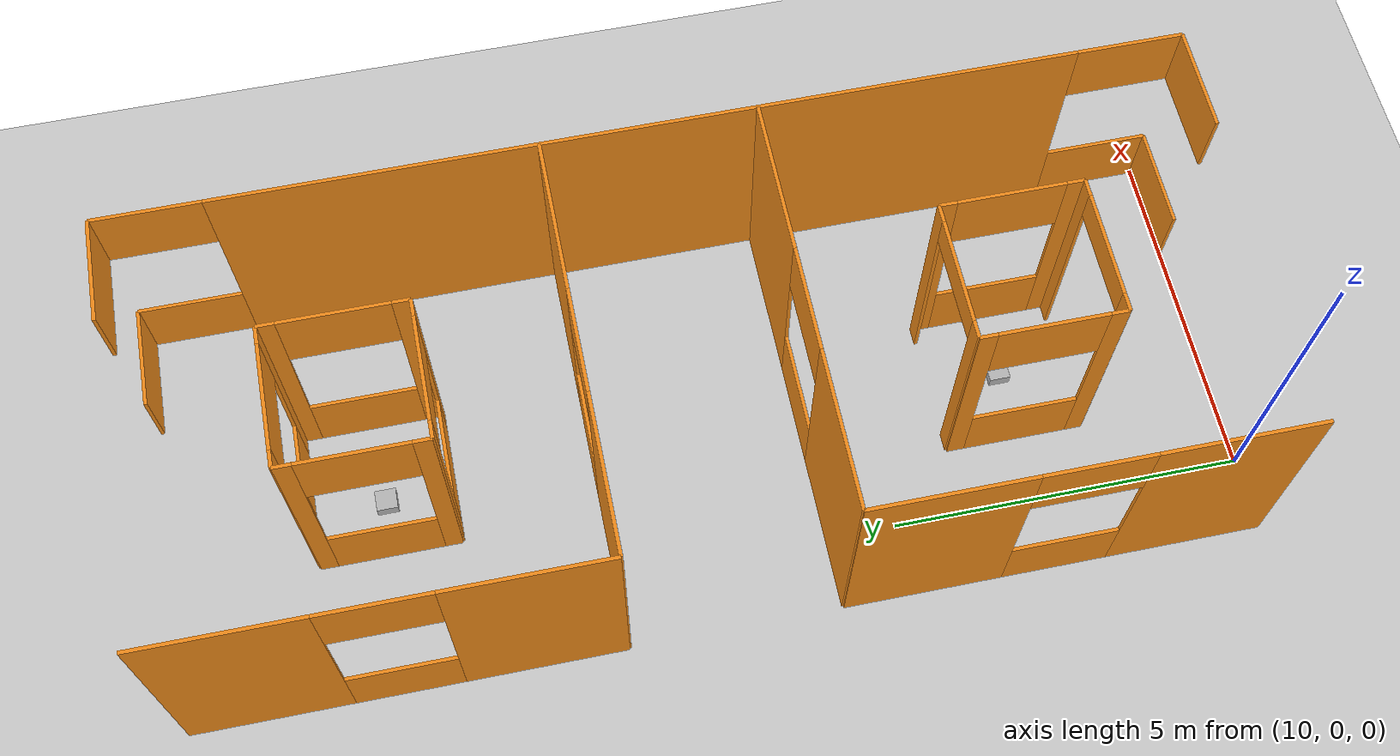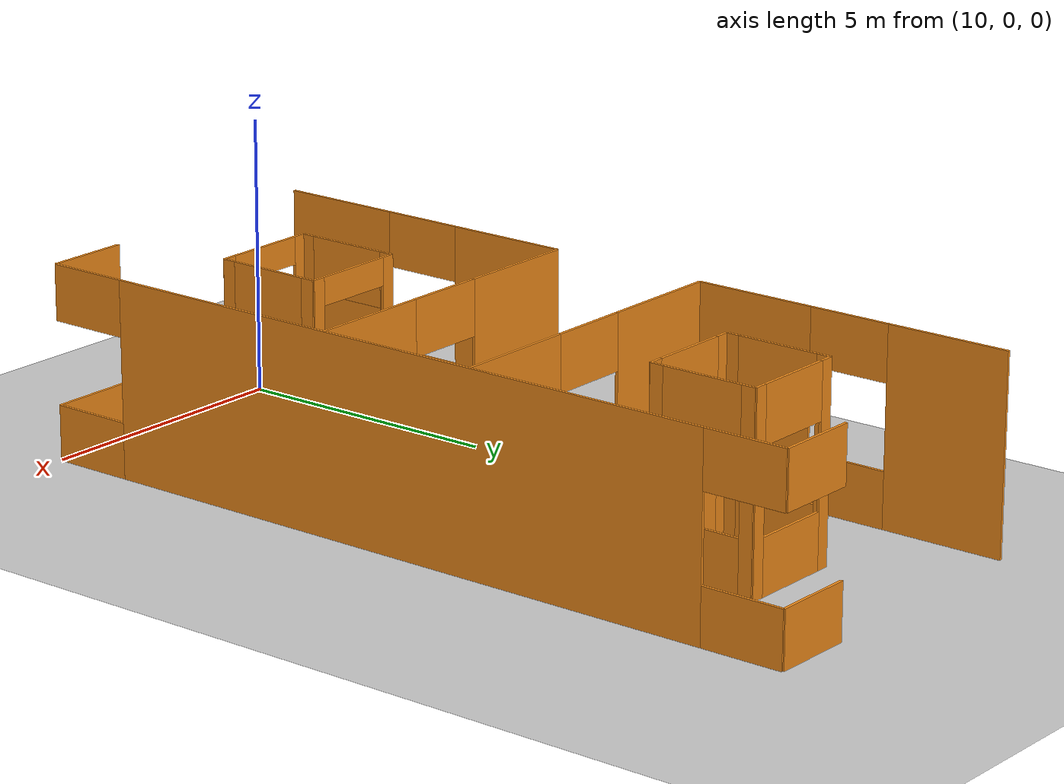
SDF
<sdf version="1.6">
 <world name="default">
  <include><uri>model://rirpc_box</uri><name>cube_4</name><pose>11.78125 11.96875 0 0 0 0</pose></include>
  <include><uri>model://rirpc_box</uri><name>cube_1</name><pose>12.03125 2.96875 0 0 0 0</pose></include>
  <model name="window_26">
   <pose>13.0 3.0 1.75 0 0 -1.5707963267948966</pose>
   <link name="top">
    <pose>0 0 1.25 0 0 0</pose>
    <inertial>
     <mass>1</mass>
     <inertia><ixx>0</ixx><ixy>0</ixy><ixz>0</ixz><iyy>0</iyy><iyz>0</iyz><izz>0</izz></inertia>
    </inertial>
    <collision name="collision"><geometry><box><size>1.5 0.05 1.0</size></box></geometry></collision>
    <visual name="visual">
     <geometry><box><size>1.5 0.05 1.0</size></box></geometry>
     <material>
      <script><name>Gazebo/Orange</name><uri>file://media/materials/scripts/gazebo.material</uri></script>
     </material>
    </visual>
   </link>
   <link name="bot">
    <pose>0 0 -1.25 0 0 0</pose>
    <inertial>
     <mass>1</mass>
     <inertia><ixx>0</ixx><ixy>0</ixy><ixz>0</ixz><iyy>0</iyy><iyz>0</iyz><izz>0</izz></inertia>
    </inertial>
    <collision name="collision"><geometry><box><size>1.5 0.05 1.0</size></box></geometry></collision>
    <visual name="visual">
     <geometry><box><size>1.5 0.05 1.0</size></box></geometry>
     <material>
      <script><name>Gazebo/Orange</name><uri>file://media/materials/scripts/gazebo.material</uri></script>
     </material>
    </visual>
   </link>
   <static>1</static>
  </model>
  <model name="window_25">
   <pose>11.0 3.0 1.75 0 0 1.5707963267948966</pose>
   <link name="top">
    <pose>0 0 1.25 0 0 0</pose>
    <inertial>
     <mass>1</mass>
     <inertia><ixx>0</ixx><ixy>0</ixy><ixz>0</ixz><iyy>0</iyy><iyz>0</iyz><izz>0</izz></inertia>
    </inertial>
    <collision name="collision"><geometry><box><size>1.5 0.05 1.0</size></box></geometry></collision>
    <visual name="visual">
     <geometry><box><size>1.5 0.05 1.0</size></box></geometry>
     <material>
      <script><name>Gazebo/Orange</name><uri>file://media/materials/scripts/gazebo.material</uri></script>
     </material>
    </visual>
   </link>
   <link name="bot">
    <pose>0 0 -1.25 0 0 0</pose>
    <inertial>
     <mass>1</mass>
     <inertia><ixx>0</ixx><ixy>0</ixy><ixz>0</ixz><iyy>0</iyy><iyz>0</iyz><izz>0</izz></inertia>
    </inertial>
    <collision name="collision"><geometry><box><size>1.5 0.05 1.0</size></box></geometry></collision>
    <visual name="visual">
     <geometry><box><size>1.5 0.05 1.0</size></box></geometry>
     <material>
      <script><name>Gazebo/Orange</name><uri>file://media/materials/scripts/gazebo.material</uri></script>
     </material>
    </visual>
   </link>
   <static>1</static>
  </model>
  <model name="window_24">
   <pose>12.0 13.0 1.75 0 0 -3.141592653589793</pose>
   <link name="top">
    <pose>0 0 1.25 0 0 0</pose>
    <inertial>
     <mass>1</mass>
     <inertia><ixx>0</ixx><ixy>0</ixy><ixz>0</ixz><iyy>0</iyy><iyz>0</iyz><izz>0</izz></inertia>
    </inertial>
    <collision name="collision"><geometry><box><size>1.5 0.05 1.0</size></box></geometry></collision>
    <visual name="visual">
     <geometry><box><size>1.5 0.05 1.0</size></box></geometry>
     <material>
      <script><name>Gazebo/Orange</name><uri>file://media/materials/scripts/gazebo.material</uri></script>
     </material>
    </visual>
   </link>
   <link name="bot">
    <pose>0 0 -1.25 0 0 0</pose>
    <inertial>
     <mass>1</mass>
     <inertia><ixx>0</ixx><ixy>0</ixy><ixz>0</ixz><iyy>0</iyy><iyz>0</iyz><izz>0</izz></inertia>
    </inertial>
    <collision name="collision"><geometry><box><size>1.5 0.05 1.0</size></box></geometry></collision>
    <visual name="visual">
     <geometry><box><size>1.5 0.05 1.0</size></box></geometry>
     <material>
      <script><name>Gazebo/Orange</name><uri>file://media/materials/scripts/gazebo.material</uri></script>
     </material>
    </visual>
   </link>
   <static>1</static>
  </model>
  <model name="window_23">
   <pose>11.0 12.0 1.75 0 0 -1.5707963267948966</pose>
   <link name="top">
    <pose>0 0 1.25 0 0 0</pose>
    <inertial>
     <mass>1</mass>
     <inertia><ixx>0</ixx><ixy>0</ixy><ixz>0</ixz><iyy>0</iyy><iyz>0</iyz><izz>0</izz></inertia>
    </inertial>
    <collision name="collision"><geometry><box><size>1.5 0.05 1.0</size></box></geometry></collision>
    <visual name="visual">
     <geometry><box><size>1.5 0.05 1.0</size></box></geometry>
     <material>
      <script><name>Gazebo/Orange</name><uri>file://media/materials/scripts/gazebo.material</uri></script>
     </material>
    </visual>
   </link>
   <link name="bot">
    <pose>0 0 -1.25 0 0 0</pose>
    <inertial>
     <mass>1</mass>
     <inertia><ixx>0</ixx><ixy>0</ixy><ixz>0</ixz><iyy>0</iyy><iyz>0</iyz><izz>0</izz></inertia>
    </inertial>
    <collision name="collision"><geometry><box><size>1.5 0.05 1.0</size></box></geometry></collision>
    <visual name="visual">
     <geometry><box><size>1.5 0.05 1.0</size></box></geometry>
     <material>
      <script><name>Gazebo/Orange</name><uri>file://media/materials/scripts/gazebo.material</uri></script>
     </material>
    </visual>
   </link>
   <static>1</static>
  </model>
  <model name="window_22">
   <pose>12.0 11.0 1.75 0 0 -0.0</pose>
   <link name="top">
    <pose>0 0 1.25 0 0 0</pose>
    <inertial>
     <mass>1</mass>
     <inertia><ixx>0</ixx><ixy>0</ixy><ixz>0</ixz><iyy>0</iyy><iyz>0</iyz><izz>0</izz></inertia>
    </inertial>
    <collision name="collision"><geometry><box><size>1.5 0.05 1.0</size></box></geometry></collision>
    <visual name="visual">
     <geometry><box><size>1.5 0.05 1.0</size></box></geometry>
     <material>
      <script><name>Gazebo/Orange</name><uri>file://media/materials/scripts/gazebo.material</uri></script>
     </material>
    </visual>
   </link>
   <link name="bot">
    <pose>0 0 -1.25 0 0 0</pose>
    <inertial>
     <mass>1</mass>
     <inertia><ixx>0</ixx><ixy>0</ixy><ixz>0</ixz><iyy>0</iyy><iyz>0</iyz><izz>0</izz></inertia>
    </inertial>
    <collision name="collision"><geometry><box><size>1.5 0.05 1.0</size></box></geometry></collision>
    <visual name="visual">
     <geometry><box><size>1.5 0.05 1.0</size></box></geometry>
     <material>
      <script><name>Gazebo/Orange</name><uri>file://media/materials/scripts/gazebo.material</uri></script>
     </material>
    </visual>
   </link>
   <static>1</static>
  </model>
  <model name="window_21">
   <pose>13.0 12.0 1.75 0 0 1.5707963267948966</pose>
   <link name="top">
    <pose>0 0 1.25 0 0 0</pose>
    <inertial>
     <mass>1</mass>
     <inertia><ixx>0</ixx><ixy>0</ixy><ixz>0</ixz><iyy>0</iyy><iyz>0</iyz><izz>0</izz></inertia>
    </inertial>
    <collision name="collision"><geometry><box><size>1.5 0.05 1.0</size></box></geometry></collision>
    <visual name="visual">
     <geometry><box><size>1.5 0.05 1.0</size></box></geometry>
     <material>
      <script><name>Gazebo/Orange</name><uri>file://media/materials/scripts/gazebo.material</uri></script>
     </material>
    </visual>
   </link>
   <link name="bot">
    <pose>0 0 -1.25 0 0 0</pose>
    <inertial>
     <mass>1</mass>
     <inertia><ixx>0</ixx><ixy>0</ixy><ixz>0</ixz><iyy>0</iyy><iyz>0</iyz><izz>0</izz></inertia>
    </inertial>
    <collision name="collision"><geometry><box><size>1.5 0.05 1.0</size></box></geometry></collision>
    <visual name="visual">
     <geometry><box><size>1.5 0.05 1.0</size></box></geometry>
     <material>
      <script><name>Gazebo/Orange</name><uri>file://media/materials/scripts/gazebo.material</uri></script>
     </material>
    </visual>
   </link>
   <static>1</static>
  </model>
  <model name="window_18">
   <pose>12.0 9.0 1.75 0 0 -3.141592653589793</pose>
   <link name="top">
    <pose>0 0 1.25 0 0 0</pose>
    <inertial>
     <mass>1</mass>
     <inertia><ixx>0</ixx><ixy>0</ixy><ixz>0</ixz><iyy>0</iyy><iyz>0</iyz><izz>0</izz></inertia>
    </inertial>
    <collision name="collision"><geometry><box><size>1.5 0.05 1.0</size></box></geometry></collision>
    <visual name="visual">
     <geometry><box><size>1.5 0.05 1.0</size></box></geometry>
     <material>
      <script><name>Gazebo/Orange</name><uri>file://media/materials/scripts/gazebo.material</uri></script>
     </material>
    </visual>
   </link>
   <link name="bot">
    <pose>0 0 -1.25 0 0 0</pose>
    <inertial>
     <mass>1</mass>
     <inertia><ixx>0</ixx><ixy>0</ixy><ixz>0</ixz><iyy>0</iyy><iyz>0</iyz><izz>0</izz></inertia>
    </inertial>
    <collision name="collision"><geometry><box><size>1.5 0.05 1.0</size></box></geometry></collision>
    <visual name="visual">
     <geometry><box><size>1.5 0.05 1.0</size></box></geometry>
     <material>
      <script><name>Gazebo/Orange</name><uri>file://media/materials/scripts/gazebo.material</uri></script>
     </material>
    </visual>
   </link>
   <static>1</static>
  </model>
  <model name="window_17">
   <pose>12.0 6.0 1.75 0 0 -0.0</pose>
   <link name="top">
    <pose>0 0 1.25 0 0 0</pose>
    <inertial>
     <mass>1</mass>
     <inertia><ixx>0</ixx><ixy>0</ixy><ixz>0</ixz><iyy>0</iyy><iyz>0</iyz><izz>0</izz></inertia>
    </inertial>
    <collision name="collision"><geometry><box><size>1.5 0.05 1.0</size></box></geometry></collision>
    <visual name="visual">
     <geometry><box><size>1.5 0.05 1.0</size></box></geometry>
     <material>
      <script><name>Gazebo/Orange</name><uri>file://media/materials/scripts/gazebo.material</uri></script>
     </material>
    </visual>
   </link>
   <link name="bot">
    <pose>0 0 -1.25 0 0 0</pose>
    <inertial>
     <mass>1</mass>
     <inertia><ixx>0</ixx><ixy>0</ixy><ixz>0</ixz><iyy>0</iyy><iyz>0</iyz><izz>0</izz></inertia>
    </inertial>
    <collision name="collision"><geometry><box><size>1.5 0.05 1.0</size></box></geometry></collision>
    <visual name="visual">
     <geometry><box><size>1.5 0.05 1.0</size></box></geometry>
     <material>
      <script><name>Gazebo/Orange</name><uri>file://media/materials/scripts/gazebo.material</uri></script>
     </material>
    </visual>
   </link>
   <static>1</static>
  </model>
  <model name="window_16">
   <pose>9.0 3.0 1.75 0 0 -1.5707963267948966</pose>
   <link name="top">
    <pose>0 0 1.25 0 0 0</pose>
    <inertial>
     <mass>1</mass>
     <inertia><ixx>0</ixx><ixy>0</ixy><ixz>0</ixz><iyy>0</iyy><iyz>0</iyz><izz>0</izz></inertia>
    </inertial>
    <collision name="collision"><geometry><box><size>1.5 0.05 1.0</size></box></geometry></collision>
    <visual name="visual">
     <geometry><box><size>1.5 0.05 1.0</size></box></geometry>
     <material>
      <script><name>Gazebo/Orange</name><uri>file://media/materials/scripts/gazebo.material</uri></script>
     </material>
    </visual>
   </link>
   <link name="bot">
    <pose>0 0 -1.25 0 0 0</pose>
    <inertial>
     <mass>1</mass>
     <inertia><ixx>0</ixx><ixy>0</ixy><ixz>0</ixz><iyy>0</iyy><iyz>0</iyz><izz>0</izz></inertia>
    </inertial>
    <collision name="collision"><geometry><box><size>1.5 0.05 1.0</size></box></geometry></collision>
    <visual name="visual">
     <geometry><box><size>1.5 0.05 1.0</size></box></geometry>
     <material>
      <script><name>Gazebo/Orange</name><uri>file://media/materials/scripts/gazebo.material</uri></script>
     </material>
    </visual>
   </link>
   <static>1</static>
  </model>
  <model name="window_14">
   <pose>9.0 12.0 1.75 0 0 1.5707963267948966</pose>
   <link name="top">
    <pose>0 0 1.25 0 0 0</pose>
    <inertial>
     <mass>1</mass>
     <inertia><ixx>0</ixx><ixy>0</ixy><ixz>0</ixz><iyy>0</iyy><iyz>0</iyz><izz>0</izz></inertia>
    </inertial>
    <collision name="collision"><geometry><box><size>1.5 0.05 1.0</size></box></geometry></collision>
    <visual name="visual">
     <geometry><box><size>1.5 0.05 1.0</size></box></geometry>
     <material>
      <script><name>Gazebo/Orange</name><uri>file://media/materials/scripts/gazebo.material</uri></script>
     </material>
    </visual>
   </link>
   <link name="bot">
    <pose>0 0 -1.25 0 0 0</pose>
    <inertial>
     <mass>1</mass>
     <inertia><ixx>0</ixx><ixy>0</ixy><ixz>0</ixz><iyy>0</iyy><iyz>0</iyz><izz>0</izz></inertia>
    </inertial>
    <collision name="collision"><geometry><box><size>1.5 0.05 1.0</size></box></geometry></collision>
    <visual name="visual">
     <geometry><box><size>1.5 0.05 1.0</size></box></geometry>
     <material>
      <script><name>Gazebo/Orange</name><uri>file://media/materials/scripts/gazebo.material</uri></script>
     </material>
    </visual>
   </link>
   <static>1</static>
  </model>
  <model name="window_6">
   <pose>14.25 15.0 1.75 0 0 -0.0</pose>
   <link name="top">
    <pose>0 0 1.25 0 0 0</pose>
    <inertial>
     <mass>1</mass>
     <inertia><ixx>0</ixx><ixy>0</ixy><ixz>0</ixz><iyy>0</iyy><iyz>0</iyz><izz>0</izz></inertia>
    </inertial>
    <collision name="collision"><geometry><box><size>1.5 0.05 1.0</size></box></geometry></collision>
    <visual name="visual">
     <geometry><box><size>1.5 0.05 1.0</size></box></geometry>
     <material>
      <script><name>Gazebo/Orange</name><uri>file://media/materials/scripts/gazebo.material</uri></script>
     </material>
    </visual>
   </link>
   <link name="bot">
    <pose>0 0 -1.25 0 0 0</pose>
    <inertial>
     <mass>1</mass>
     <inertia><ixx>0</ixx><ixy>0</ixy><ixz>0</ixz><iyy>0</iyy><iyz>0</iyz><izz>0</izz></inertia>
    </inertial>
    <collision name="collision"><geometry><box><size>1.5 0.05 1.0</size></box></geometry></collision>
    <visual name="visual">
     <geometry><box><size>1.5 0.05 1.0</size></box></geometry>
     <material>
      <script><name>Gazebo/Orange</name><uri>file://media/materials/scripts/gazebo.material</uri></script>
     </material>
    </visual>
   </link>
   <static>1</static>
  </model>
  <model name="window_5">
   <pose>15.0 14.25 1.75 0 0 -1.5707963267948966</pose>
   <link name="top">
    <pose>0 0 1.25 0 0 0</pose>
    <inertial>
     <mass>1</mass>
     <inertia><ixx>0</ixx><ixy>0</ixy><ixz>0</ixz><iyy>0</iyy><iyz>0</iyz><izz>0</izz></inertia>
    </inertial>
    <collision name="collision"><geometry><box><size>1.5 0.05 1.0</size></box></geometry></collision>
    <visual name="visual">
     <geometry><box><size>1.5 0.05 1.0</size></box></geometry>
     <material>
      <script><name>Gazebo/Orange</name><uri>file://media/materials/scripts/gazebo.material</uri></script>
     </material>
    </visual>
   </link>
   <link name="bot">
    <pose>0 0 -1.25 0 0 0</pose>
    <inertial>
     <mass>1</mass>
     <inertia><ixx>0</ixx><ixy>0</ixy><ixz>0</ixz><iyy>0</iyy><iyz>0</iyz><izz>0</izz></inertia>
    </inertial>
    <collision name="collision"><geometry><box><size>1.5 0.05 1.0</size></box></geometry></collision>
    <visual name="visual">
     <geometry><box><size>1.5 0.05 1.0</size></box></geometry>
     <material>
      <script><name>Gazebo/Orange</name><uri>file://media/materials/scripts/gazebo.material</uri></script>
     </material>
    </visual>
   </link>
   <static>1</static>
  </model>
  <model name="window_4">
   <pose>15.0 0.75 1.75 0 0 -1.5707963267948966</pose>
   <link name="top">
    <pose>0 0 1.25 0 0 0</pose>
    <inertial>
     <mass>1</mass>
     <inertia><ixx>0</ixx><ixy>0</ixy><ixz>0</ixz><iyy>0</iyy><iyz>0</iyz><izz>0</izz></inertia>
    </inertial>
    <collision name="collision"><geometry><box><size>1.5 0.05 1.0</size></box></geometry></collision>
    <visual name="visual">
     <geometry><box><size>1.5 0.05 1.0</size></box></geometry>
     <material>
      <script><name>Gazebo/Orange</name><uri>file://media/materials/scripts/gazebo.material</uri></script>
     </material>
    </visual>
   </link>
   <link name="bot">
    <pose>0 0 -1.25 0 0 0</pose>
    <inertial>
     <mass>1</mass>
     <inertia><ixx>0</ixx><ixy>0</ixy><ixz>0</ixz><iyy>0</iyy><iyz>0</iyz><izz>0</izz></inertia>
    </inertial>
    <collision name="collision"><geometry><box><size>1.5 0.05 1.0</size></box></geometry></collision>
    <visual name="visual">
     <geometry><box><size>1.5 0.05 1.0</size></box></geometry>
     <material>
      <script><name>Gazebo/Orange</name><uri>file://media/materials/scripts/gazebo.material</uri></script>
     </material>
    </visual>
   </link>
   <static>1</static>
  </model>
  <model name="window_3">
   <pose>14.25 0.0 1.75 0 0 -3.141592653589793</pose>
   <link name="top">
    <pose>0 0 1.25 0 0 0</pose>
    <inertial>
     <mass>1</mass>
     <inertia><ixx>0</ixx><ixy>0</ixy><ixz>0</ixz><iyy>0</iyy><iyz>0</iyz><izz>0</izz></inertia>
    </inertial>
    <collision name="collision"><geometry><box><size>1.5 0.05 1.0</size></box></geometry></collision>
    <visual name="visual">
     <geometry><box><size>1.5 0.05 1.0</size></box></geometry>
     <material>
      <script><name>Gazebo/Orange</name><uri>file://media/materials/scripts/gazebo.material</uri></script>
     </material>
    </visual>
   </link>
   <link name="bot">
    <pose>0 0 -1.25 0 0 0</pose>
    <inertial>
     <mass>1</mass>
     <inertia><ixx>0</ixx><ixy>0</ixy><ixz>0</ixz><iyy>0</iyy><iyz>0</iyz><izz>0</izz></inertia>
    </inertial>
    <collision name="collision"><geometry><box><size>1.5 0.05 1.0</size></box></geometry></collision>
    <visual name="visual">
     <geometry><box><size>1.5 0.05 1.0</size></box></geometry>
     <material>
      <script><name>Gazebo/Orange</name><uri>file://media/materials/scripts/gazebo.material</uri></script>
     </material>
    </visual>
   </link>
   <static>1</static>
  </model>
  <model name="box_56">
   <pose>12.0 2.0 3.25 0 0 -0.0</pose>
   <link name="link">
    <inertial>
     <mass>1</mass>
     <inertia><ixx>0</ixx><ixy>0</ixy><ixz>0</ixz><iyy>0</iyy><iyz>0</iyz><izz>0</izz></inertia>
    </inertial>
    <collision name="collision"><geometry><box><size>1.5 0.05 0.5</size></box></geometry></collision>
    <visual name="visual">
     <geometry><box><size>1.5 0.05 0.5</size></box></geometry>
     <material>
      <script><name>Gazebo/Orange</name><uri>file://media/materials/scripts/gazebo.material</uri></script>
     </material>
    </visual>
   </link>
   <static>1</static>
  </model>
  <model name="box_55">
   <pose>12.0 4.0 3.25 0 0 -3.141592653589793</pose>
   <link name="link">
    <inertial>
     <mass>1</mass>
     <inertia><ixx>0</ixx><ixy>0</ixy><ixz>0</ixz><iyy>0</iyy><iyz>0</iyz><izz>0</izz></inertia>
    </inertial>
    <collision name="collision"><geometry><box><size>1.5 0.05 0.5</size></box></geometry></collision>
    <visual name="visual">
     <geometry><box><size>1.5 0.05 0.5</size></box></geometry>
     <material>
      <script><name>Gazebo/Orange</name><uri>file://media/materials/scripts/gazebo.material</uri></script>
     </material>
    </visual>
   </link>
   <static>1</static>
  </model>
  <model name="box_49">
   <pose>11.0 2.125 1.75 0 0 -1.5707963267948966</pose>
   <link name="link">
    <inertial>
     <mass>1</mass>
     <inertia><ixx>0</ixx><ixy>0</ixy><ixz>0</ixz><iyy>0</iyy><iyz>0</iyz><izz>0</izz></inertia>
    </inertial>
    <collision name="collision"><geometry><box><size>0.25 0.05 3.5</size></box></geometry></collision>
    <visual name="visual">
     <geometry><box><size>0.25 0.05 3.5</size></box></geometry>
     <material>
      <script><name>Gazebo/Orange</name><uri>file://media/materials/scripts/gazebo.material</uri></script>
     </material>
    </visual>
   </link>
   <static>1</static>
  </model>
  <model name="box_48">
   <pose>11.125 2.0 1.75 0 0 -0.0</pose>
   <link name="link">
    <inertial>
     <mass>1</mass>
     <inertia><ixx>0</ixx><ixy>0</ixy><ixz>0</ixz><iyy>0</iyy><iyz>0</iyz><izz>0</izz></inertia>
    </inertial>
    <collision name="collision"><geometry><box><size>0.25 0.05 3.5</size></box></geometry></collision>
    <visual name="visual">
     <geometry><box><size>0.25 0.05 3.5</size></box></geometry>
     <material>
      <script><name>Gazebo/Orange</name><uri>file://media/materials/scripts/gazebo.material</uri></script>
     </material>
    </visual>
   </link>
   <static>1</static>
  </model>
  <model name="box_47">
   <pose>12.875 2.0 1.75 0 0 -0.0</pose>
   <link name="link">
    <inertial>
     <mass>1</mass>
     <inertia><ixx>0</ixx><ixy>0</ixy><ixz>0</ixz><iyy>0</iyy><iyz>0</iyz><izz>0</izz></inertia>
    </inertial>
    <collision name="collision"><geometry><box><size>0.25 0.05 3.5</size></box></geometry></collision>
    <visual name="visual">
     <geometry><box><size>0.25 0.05 3.5</size></box></geometry>
     <material>
      <script><name>Gazebo/Orange</name><uri>file://media/materials/scripts/gazebo.material</uri></script>
     </material>
    </visual>
   </link>
   <static>1</static>
  </model>
  <model name="box_46">
   <pose>13.0 2.125 1.75 0 0 1.5707963267948966</pose>
   <link name="link">
    <inertial>
     <mass>1</mass>
     <inertia><ixx>0</ixx><ixy>0</ixy><ixz>0</ixz><iyy>0</iyy><iyz>0</iyz><izz>0</izz></inertia>
    </inertial>
    <collision name="collision"><geometry><box><size>0.25 0.05 3.5</size></box></geometry></collision>
    <visual name="visual">
     <geometry><box><size>0.25 0.05 3.5</size></box></geometry>
     <material>
      <script><name>Gazebo/Orange</name><uri>file://media/materials/scripts/gazebo.material</uri></script>
     </material>
    </visual>
   </link>
   <static>1</static>
  </model>
  <model name="box_45">
   <pose>13.0 3.875 1.75 0 0 1.5707963267948966</pose>
   <link name="link">
    <inertial>
     <mass>1</mass>
     <inertia><ixx>0</ixx><ixy>0</ixy><ixz>0</ixz><iyy>0</iyy><iyz>0</iyz><izz>0</izz></inertia>
    </inertial>
    <collision name="collision"><geometry><box><size>0.25 0.05 3.5</size></box></geometry></collision>
    <visual name="visual">
     <geometry><box><size>0.25 0.05 3.5</size></box></geometry>
     <material>
      <script><name>Gazebo/Orange</name><uri>file://media/materials/scripts/gazebo.material</uri></script>
     </material>
    </visual>
   </link>
   <static>1</static>
  </model>
  <model name="box_44">
   <pose>12.875 4.0 1.75 0 0 -3.141592653589793</pose>
   <link name="link">
    <inertial>
     <mass>1</mass>
     <inertia><ixx>0</ixx><ixy>0</ixy><ixz>0</ixz><iyy>0</iyy><iyz>0</iyz><izz>0</izz></inertia>
    </inertial>
    <collision name="collision"><geometry><box><size>0.25 0.05 3.5</size></box></geometry></collision>
    <visual name="visual">
     <geometry><box><size>0.25 0.05 3.5</size></box></geometry>
     <material>
      <script><name>Gazebo/Orange</name><uri>file://media/materials/scripts/gazebo.material</uri></script>
     </material>
    </visual>
   </link>
   <static>1</static>
  </model>
  <model name="box_43">
   <pose>11.125 4.0 1.75 0 0 -3.141592653589793</pose>
   <link name="link">
    <inertial>
     <mass>1</mass>
     <inertia><ixx>0</ixx><ixy>0</ixy><ixz>0</ixz><iyy>0</iyy><iyz>0</iyz><izz>0</izz></inertia>
    </inertial>
    <collision name="collision"><geometry><box><size>0.25 0.05 3.5</size></box></geometry></collision>
    <visual name="visual">
     <geometry><box><size>0.25 0.05 3.5</size></box></geometry>
     <material>
      <script><name>Gazebo/Orange</name><uri>file://media/materials/scripts/gazebo.material</uri></script>
     </material>
    </visual>
   </link>
   <static>1</static>
  </model>
  <model name="box_42">
   <pose>11.0 3.875 1.75 0 0 -1.5707963267948966</pose>
   <link name="link">
    <inertial>
     <mass>1</mass>
     <inertia><ixx>0</ixx><ixy>0</ixy><ixz>0</ixz><iyy>0</iyy><iyz>0</iyz><izz>0</izz></inertia>
    </inertial>
    <collision name="collision"><geometry><box><size>0.25 0.05 3.5</size></box></geometry></collision>
    <visual name="visual">
     <geometry><box><size>0.25 0.05 3.5</size></box></geometry>
     <material>
      <script><name>Gazebo/Orange</name><uri>file://media/materials/scripts/gazebo.material</uri></script>
     </material>
    </visual>
   </link>
   <static>1</static>
  </model>
  <model name="box_40">
   <pose>11.125 13.0 1.75 0 0 -3.141592653589793</pose>
   <link name="link">
    <inertial>
     <mass>1</mass>
     <inertia><ixx>0</ixx><ixy>0</ixy><ixz>0</ixz><iyy>0</iyy><iyz>0</iyz><izz>0</izz></inertia>
    </inertial>
    <collision name="collision"><geometry><box><size>0.25 0.05 3.5</size></box></geometry></collision>
    <visual name="visual">
     <geometry><box><size>0.25 0.05 3.5</size></box></geometry>
     <material>
      <script><name>Gazebo/Orange</name><uri>file://media/materials/scripts/gazebo.material</uri></script>
     </material>
    </visual>
   </link>
   <static>1</static>
  </model>
  <model name="box_39">
   <pose>11.0 12.875 1.75 0 0 -1.5707963267948966</pose>
   <link name="link">
    <inertial>
     <mass>1</mass>
     <inertia><ixx>0</ixx><ixy>0</ixy><ixz>0</ixz><iyy>0</iyy><iyz>0</iyz><izz>0</izz></inertia>
    </inertial>
    <collision name="collision"><geometry><box><size>0.25 0.05 3.5</size></box></geometry></collision>
    <visual name="visual">
     <geometry><box><size>0.25 0.05 3.5</size></box></geometry>
     <material>
      <script><name>Gazebo/Orange</name><uri>file://media/materials/scripts/gazebo.material</uri></script>
     </material>
    </visual>
   </link>
   <static>1</static>
  </model>
  <model name="box_38">
   <pose>11.0 11.125 1.75 0 0 -1.5707963267948966</pose>
   <link name="link">
    <inertial>
     <mass>1</mass>
     <inertia><ixx>0</ixx><ixy>0</ixy><ixz>0</ixz><iyy>0</iyy><iyz>0</iyz><izz>0</izz></inertia>
    </inertial>
    <collision name="collision"><geometry><box><size>0.25 0.05 3.5</size></box></geometry></collision>
    <visual name="visual">
     <geometry><box><size>0.25 0.05 3.5</size></box></geometry>
     <material>
      <script><name>Gazebo/Orange</name><uri>file://media/materials/scripts/gazebo.material</uri></script>
     </material>
    </visual>
   </link>
   <static>1</static>
  </model>
  <model name="box_37">
   <pose>11.125 11.0 1.75 0 0 -0.0</pose>
   <link name="link">
    <inertial>
     <mass>1</mass>
     <inertia><ixx>0</ixx><ixy>0</ixy><ixz>0</ixz><iyy>0</iyy><iyz>0</iyz><izz>0</izz></inertia>
    </inertial>
    <collision name="collision"><geometry><box><size>0.25 0.05 3.5</size></box></geometry></collision>
    <visual name="visual">
     <geometry><box><size>0.25 0.05 3.5</size></box></geometry>
     <material>
      <script><name>Gazebo/Orange</name><uri>file://media/materials/scripts/gazebo.material</uri></script>
     </material>
    </visual>
   </link>
   <static>1</static>
  </model>
  <model name="box_36">
   <pose>12.875 11.0 1.75 0 0 -0.0</pose>
   <link name="link">
    <inertial>
     <mass>1</mass>
     <inertia><ixx>0</ixx><ixy>0</ixy><ixz>0</ixz><iyy>0</iyy><iyz>0</iyz><izz>0</izz></inertia>
    </inertial>
    <collision name="collision"><geometry><box><size>0.25 0.05 3.5</size></box></geometry></collision>
    <visual name="visual">
     <geometry><box><size>0.25 0.05 3.5</size></box></geometry>
     <material>
      <script><name>Gazebo/Orange</name><uri>file://media/materials/scripts/gazebo.material</uri></script>
     </material>
    </visual>
   </link>
   <static>1</static>
  </model>
  <model name="box_35">
   <pose>13.0 11.125 1.75 0 0 1.5707963267948966</pose>
   <link name="link">
    <inertial>
     <mass>1</mass>
     <inertia><ixx>0</ixx><ixy>0</ixy><ixz>0</ixz><iyy>0</iyy><iyz>0</iyz><izz>0</izz></inertia>
    </inertial>
    <collision name="collision"><geometry><box><size>0.25 0.05 3.5</size></box></geometry></collision>
    <visual name="visual">
     <geometry><box><size>0.25 0.05 3.5</size></box></geometry>
     <material>
      <script><name>Gazebo/Orange</name><uri>file://media/materials/scripts/gazebo.material</uri></script>
     </material>
    </visual>
   </link>
   <static>1</static>
  </model>
  <model name="box_34">
   <pose>13.0 12.875 1.75 0 0 1.5707963267948966</pose>
   <link name="link">
    <inertial>
     <mass>1</mass>
     <inertia><ixx>0</ixx><ixy>0</ixy><ixz>0</ixz><iyy>0</iyy><iyz>0</iyz><izz>0</izz></inertia>
    </inertial>
    <collision name="collision"><geometry><box><size>0.25 0.05 3.5</size></box></geometry></collision>
    <visual name="visual">
     <geometry><box><size>0.25 0.05 3.5</size></box></geometry>
     <material>
      <script><name>Gazebo/Orange</name><uri>file://media/materials/scripts/gazebo.material</uri></script>
     </material>
    </visual>
   </link>
   <static>1</static>
  </model>
  <model name="box_33">
   <pose>12.875 13.0 1.75 0 0 -3.141592653589793</pose>
   <link name="link">
    <inertial>
     <mass>1</mass>
     <inertia><ixx>0</ixx><ixy>0</ixy><ixz>0</ixz><iyy>0</iyy><iyz>0</iyz><izz>0</izz></inertia>
    </inertial>
    <collision name="collision"><geometry><box><size>0.25 0.05 3.5</size></box></geometry></collision>
    <visual name="visual">
     <geometry><box><size>0.25 0.05 3.5</size></box></geometry>
     <material>
      <script><name>Gazebo/Orange</name><uri>file://media/materials/scripts/gazebo.material</uri></script>
     </material>
    </visual>
   </link>
   <static>1</static>
  </model>
  <model name="box_22">
   <pose>13.875 6.0 1.75 0 0 -3.141592653589793</pose>
   <link name="link">
    <inertial>
     <mass>1</mass>
     <inertia><ixx>0</ixx><ixy>0</ixy><ixz>0</ixz><iyy>0</iyy><iyz>0</iyz><izz>0</izz></inertia>
    </inertial>
    <collision name="collision"><geometry><box><size>2.25 0.05 3.5</size></box></geometry></collision>
    <visual name="visual">
     <geometry><box><size>2.25 0.05 3.5</size></box></geometry>
     <material>
      <script><name>Gazebo/Orange</name><uri>file://media/materials/scripts/gazebo.material</uri></script>
     </material>
    </visual>
   </link>
   <static>1</static>
  </model>
  <model name="box_21">
   <pose>10.125 6.0 1.75 0 0 -3.141592653589793</pose>
   <link name="link">
    <inertial>
     <mass>1</mass>
     <inertia><ixx>0</ixx><ixy>0</ixy><ixz>0</ixz><iyy>0</iyy><iyz>0</iyz><izz>0</izz></inertia>
    </inertial>
    <collision name="collision"><geometry><box><size>2.25 0.05 3.5</size></box></geometry></collision>
    <visual name="visual">
     <geometry><box><size>2.25 0.05 3.5</size></box></geometry>
     <material>
      <script><name>Gazebo/Orange</name><uri>file://media/materials/scripts/gazebo.material</uri></script>
     </material>
    </visual>
   </link>
   <static>1</static>
  </model>
  <model name="box_20">
   <pose>9.0 4.875 1.75 0 0 -1.5707963267948966</pose>
   <link name="link">
    <inertial>
     <mass>1</mass>
     <inertia><ixx>0</ixx><ixy>0</ixy><ixz>0</ixz><iyy>0</iyy><iyz>0</iyz><izz>0</izz></inertia>
    </inertial>
    <collision name="collision"><geometry><box><size>2.25 0.05 3.5</size></box></geometry></collision>
    <visual name="visual">
     <geometry><box><size>2.25 0.05 3.5</size></box></geometry>
     <material>
      <script><name>Gazebo/Orange</name><uri>file://media/materials/scripts/gazebo.material</uri></script>
     </material>
    </visual>
   </link>
   <static>1</static>
  </model>
  <model name="box_19">
   <pose>9.0 1.125 1.75 0 0 -1.5707963267948966</pose>
   <link name="link">
    <inertial>
     <mass>1</mass>
     <inertia><ixx>0</ixx><ixy>0</ixy><ixz>0</ixz><iyy>0</iyy><iyz>0</iyz><izz>0</izz></inertia>
    </inertial>
    <collision name="collision"><geometry><box><size>2.25 0.05 3.5</size></box></geometry></collision>
    <visual name="visual">
     <geometry><box><size>2.25 0.05 3.5</size></box></geometry>
     <material>
      <script><name>Gazebo/Orange</name><uri>file://media/materials/scripts/gazebo.material</uri></script>
     </material>
    </visual>
   </link>
   <static>1</static>
  </model>
  <model name="box_18">
   <pose>13.875 9.0 1.75 0 0 -3.141592653589793</pose>
   <link name="link">
    <inertial>
     <mass>1</mass>
     <inertia><ixx>0</ixx><ixy>0</ixy><ixz>0</ixz><iyy>0</iyy><iyz>0</iyz><izz>0</izz></inertia>
    </inertial>
    <collision name="collision"><geometry><box><size>2.25 0.05 3.5</size></box></geometry></collision>
    <visual name="visual">
     <geometry><box><size>2.25 0.05 3.5</size></box></geometry>
     <material>
      <script><name>Gazebo/Orange</name><uri>file://media/materials/scripts/gazebo.material</uri></script>
     </material>
    </visual>
   </link>
   <static>1</static>
  </model>
  <model name="box_17">
   <pose>10.125 9.0 1.75 0 0 -3.141592653589793</pose>
   <link name="link">
    <inertial>
     <mass>1</mass>
     <inertia><ixx>0</ixx><ixy>0</ixy><ixz>0</ixz><iyy>0</iyy><iyz>0</iyz><izz>0</izz></inertia>
    </inertial>
    <collision name="collision"><geometry><box><size>2.25 0.05 3.5</size></box></geometry></collision>
    <visual name="visual">
     <geometry><box><size>2.25 0.05 3.5</size></box></geometry>
     <material>
      <script><name>Gazebo/Orange</name><uri>file://media/materials/scripts/gazebo.material</uri></script>
     </material>
    </visual>
   </link>
   <static>1</static>
  </model>
  <model name="box_16">
   <pose>9.0 10.125 1.75 0 0 1.5707963267948966</pose>
   <link name="link">
    <inertial>
     <mass>1</mass>
     <inertia><ixx>0</ixx><ixy>0</ixy><ixz>0</ixz><iyy>0</iyy><iyz>0</iyz><izz>0</izz></inertia>
    </inertial>
    <collision name="collision"><geometry><box><size>2.25 0.05 3.5</size></box></geometry></collision>
    <visual name="visual">
     <geometry><box><size>2.25 0.05 3.5</size></box></geometry>
     <material>
      <script><name>Gazebo/Orange</name><uri>file://media/materials/scripts/gazebo.material</uri></script>
     </material>
    </visual>
   </link>
   <static>1</static>
  </model>
  <model name="box_15">
   <pose>9.0 13.875 1.75 0 0 1.5707963267948966</pose>
   <link name="link">
    <inertial>
     <mass>1</mass>
     <inertia><ixx>0</ixx><ixy>0</ixy><ixz>0</ixz><iyy>0</iyy><iyz>0</iyz><izz>0</izz></inertia>
    </inertial>
    <collision name="collision"><geometry><box><size>2.25 0.05 3.5</size></box></geometry></collision>
    <visual name="visual">
     <geometry><box><size>2.25 0.05 3.5</size></box></geometry>
     <material>
      <script><name>Gazebo/Orange</name><uri>file://media/materials/scripts/gazebo.material</uri></script>
     </material>
    </visual>
   </link>
   <static>1</static>
  </model>
  <model name="box_4">
   <pose>15.0 7.5 1.75 0 0 1.5707963267948966</pose>
   <link name="link">
    <inertial>
     <mass>1</mass>
     <inertia><ixx>0</ixx><ixy>0</ixy><ixz>0</ixz><iyy>0</iyy><iyz>0</iyz><izz>0</izz></inertia>
    </inertial>
    <collision name="collision"><geometry><box><size>12.0 0.05 3.5</size></box></geometry></collision>
    <visual name="visual">
     <geometry><box><size>12.0 0.05 3.5</size></box></geometry>
     <material>
      <script><name>Gazebo/Orange</name><uri>file://media/materials/scripts/gazebo.material</uri></script>
     </material>
    </visual>
   </link>
   <static>1</static>
  </model>
  <model name="ground_plane">
   <static>1</static>
   <link name="link">
    <collision name="collision">
     <geometry><plane><normal>0 0 1</normal><size>100 100</size></plane></geometry>
     <surface>
      <contact><collide_bitmask>65535</collide_bitmask></contact>
      <friction><ode><mu>100</mu><mu2>50</mu2></ode></friction>
     </surface>
    </collision>
    <visual name="visual">
     <cast_shadows>0</cast_shadows>
     <geometry><plane><normal>0 0 1</normal><size>100 100</size></plane></geometry>
     <material>
      <script><uri>file://media/materials/scripts/gazebo.material</uri><name>Gazebo/Grey</name></script>
     </material>
    </visual>
   </link>
  </model>
 </world>
</sdf>
